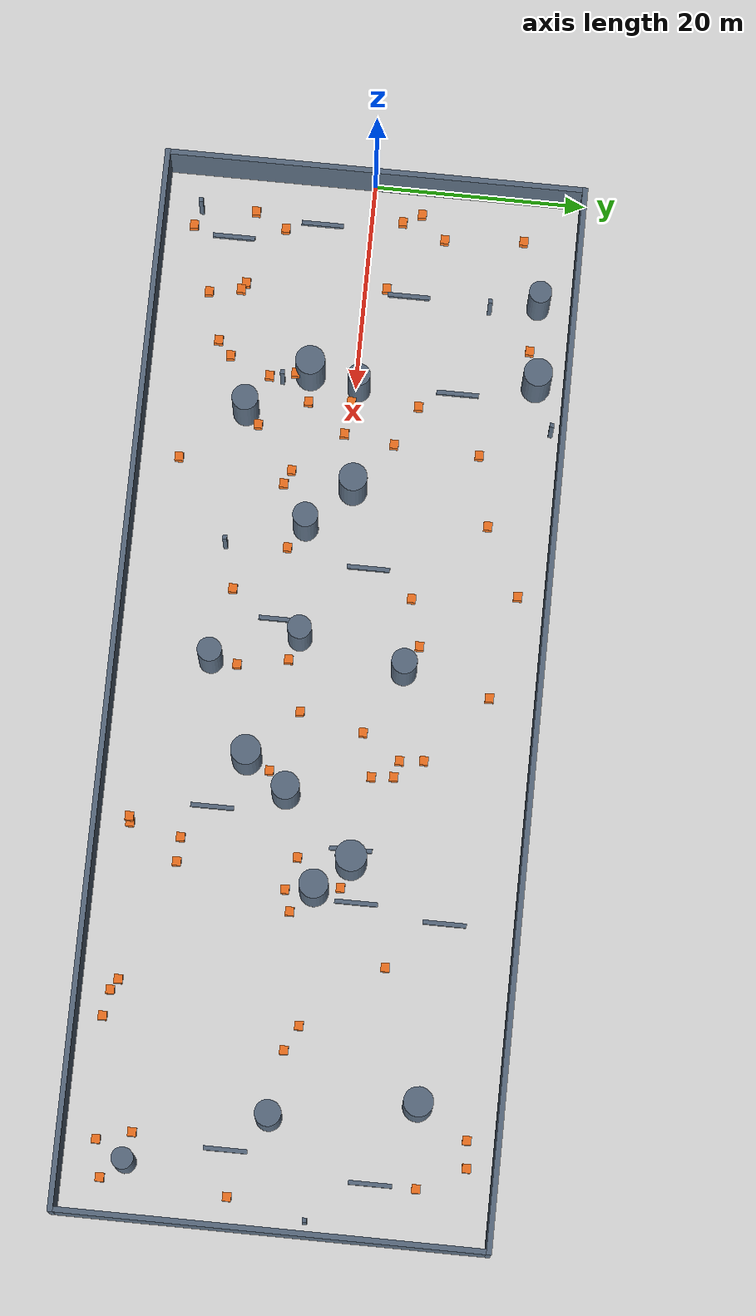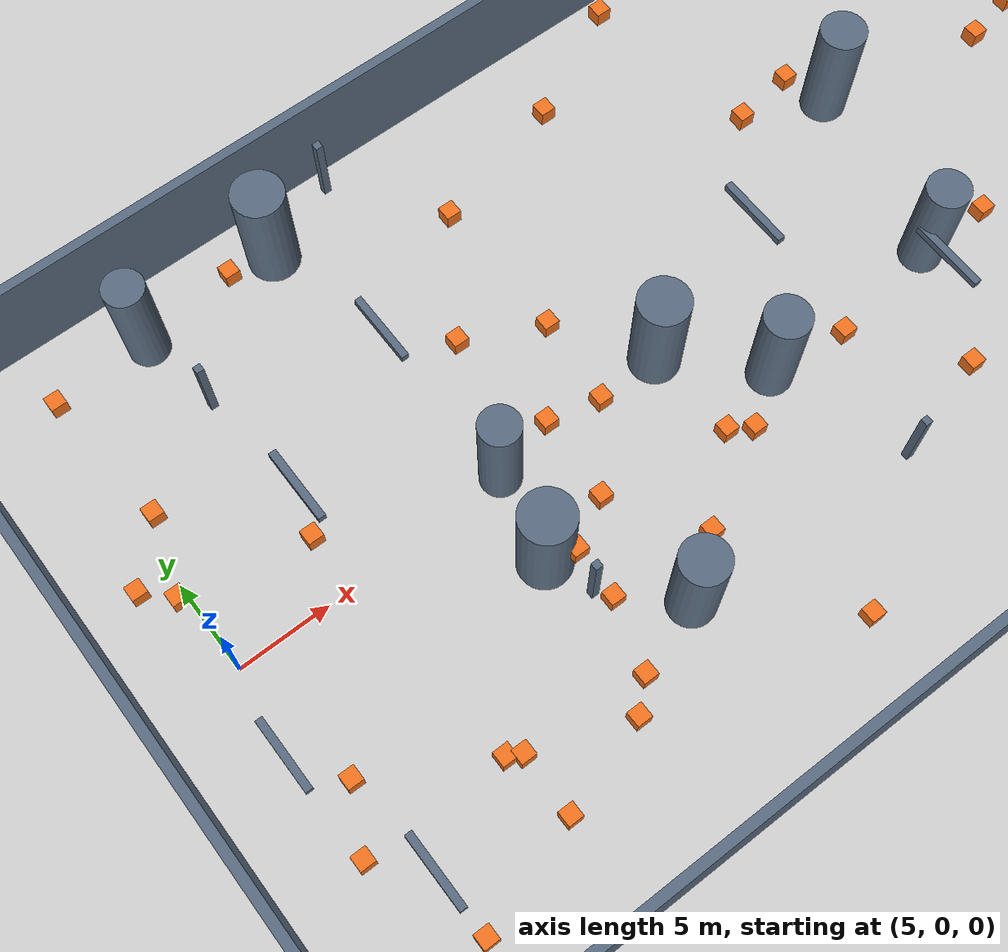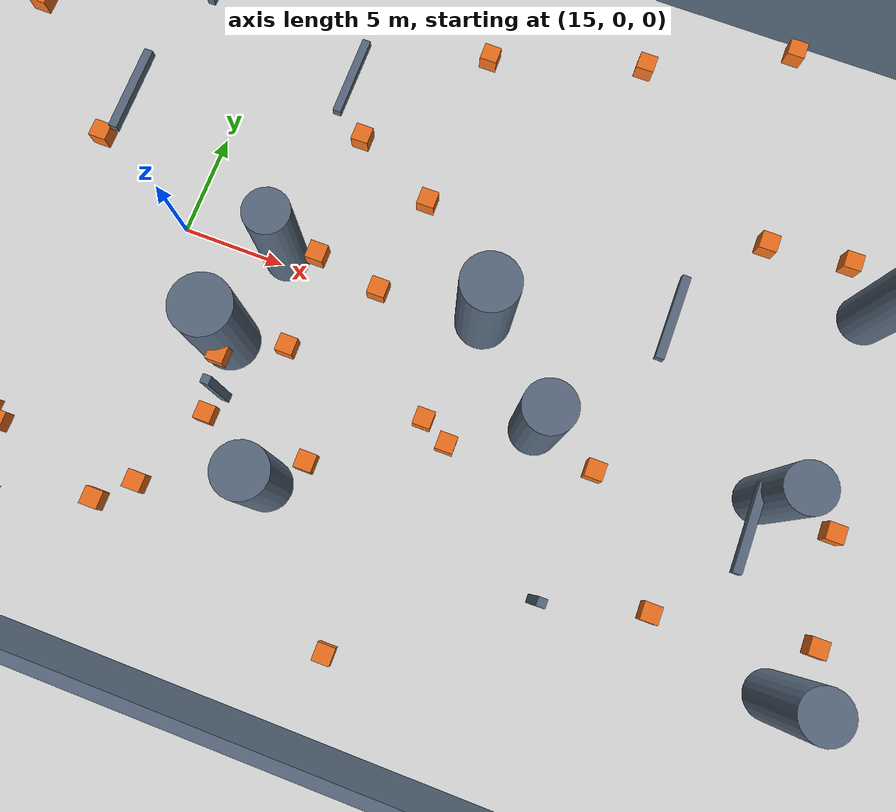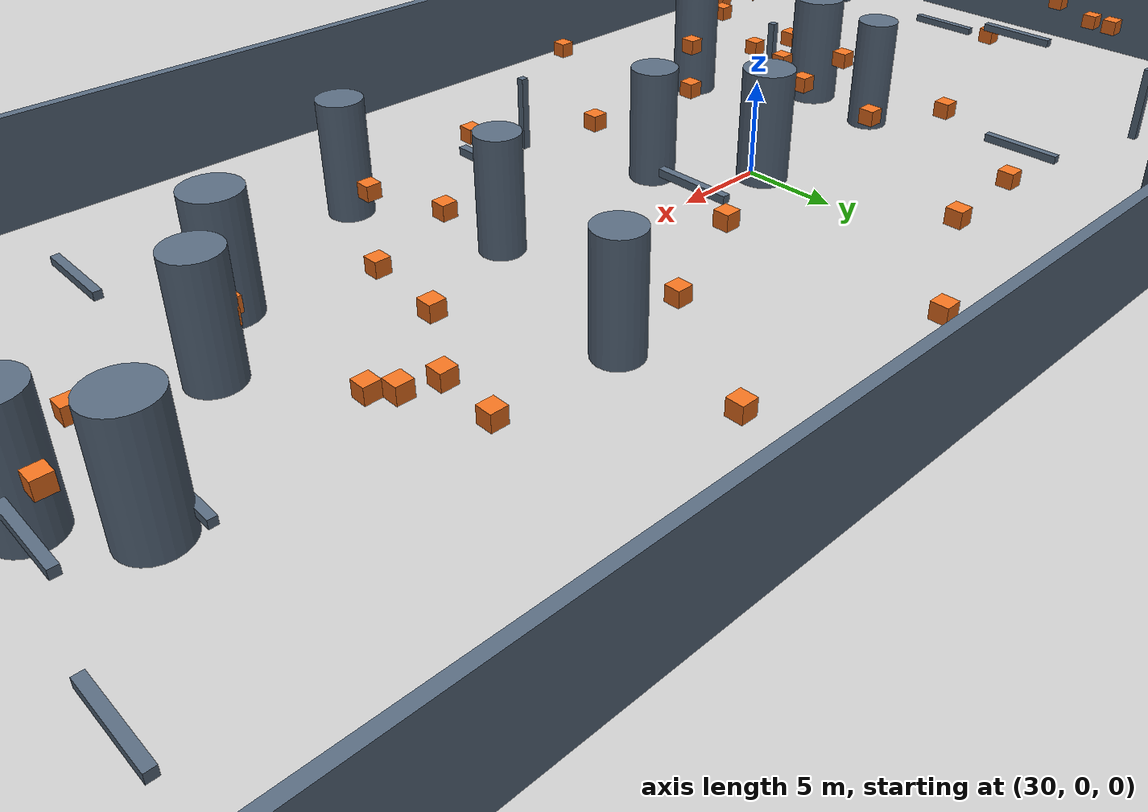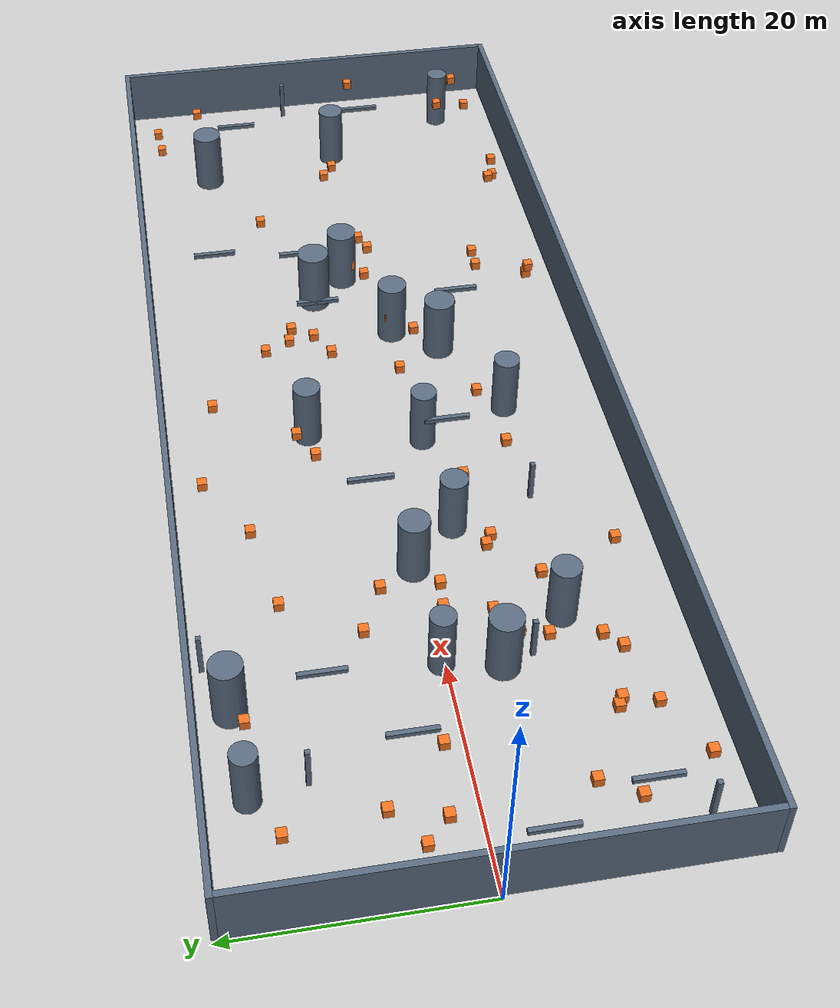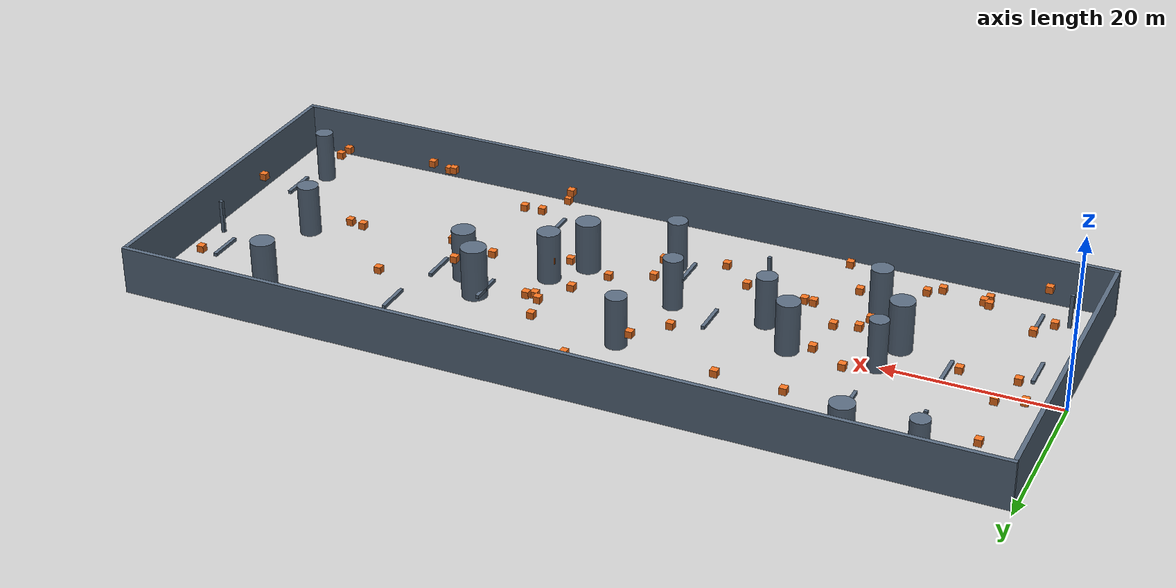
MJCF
<mujoco model="D02">
  <compiler angle="radian" />
  <include file="boundary.xml" />
  <custom>
    <text name="scene_metadata" data="{&quot;id&quot;: &quot;D02&quot;, &quot;difficulty&quot;: &quot;medium&quot;, &quot;title&quot;: &quot;SANDO medium dynamic benchmark&quot;, &quot;source&quot;: &quot;SANDO&quot;, &quot;dynamic&quot;: true, &quot;benchmark_role&quot;: &quot;primary&quot;, &quot;review_duration_s&quot;: 45.0, &quot;layout_policy&quot;: &quot;SANDO dynamic benchmark laws; fixed bounded realization; no route reservation&quot;, &quot;source_provenance&quot;: {&quot;seed&quot;: 0, &quot;total_obstacles&quot;: 100, &quot;dynamic_obstacles&quot;: 65, &quot;static_obstacles&quot;: 35, &quot;static_cylinders&quot;: 17, &quot;static_boxes&quot;: 18, &quot;static_vertical_boxes&quot;: 6, &quot;static_horizontal_boxes&quot;: 12, &quot;dynamic_fraction&quot;: 0.65, &quot;static_box_fraction_of_static_share&quot;: 0.5, &quot;static_box_vertical_fraction&quot;: 0.35, &quot;bounded_sampling_rejections&quot;: 131, &quot;sampling_note&quot;: &quot;SANDO dynamic laws conditioned on P5 physical bounds and endpoint safety; half of the static-cylinder share replaced by SANDO-sized static boxes&quot;}, &quot;topology_acceptance&quot;: {&quot;require_direct_route_blocked&quot;: true, &quot;require_reachable&quot;: true, &quot;max_full_length_straight_lanes&quot;: null, &quot;max_clear_straight_run_m&quot;: null}, &quot;obstacle_metadata&quot;: [{&quot;role&quot;: &quot;sando_dynamic_cube&quot;, &quot;source_index&quot;: 0}, {&quot;role&quot;: &quot;sando_dynamic_cube&quot;, &quot;source_index&quot;: 1}, {&quot;role&quot;: &quot;sando_dynamic_cube&quot;, &quot;source_index&quot;: 2}, {&quot;role&quot;: &quot;sando_dynamic_cube&quot;, &quot;source_index&quot;: 3}, {&quot;role&quot;: &quot;sando_dynamic_cube&quot;, &quot;source_index&quot;: 4}, {&quot;role&quot;: &quot;sando_dynamic_cube&quot;, &quot;source_index&quot;: 5}, {&quot;role&quot;: &quot;sando_dynamic_cube&quot;, &quot;source_index&quot;: 6}, {&quot;role&quot;: &quot;sando_dynamic_cube&quot;, &quot;source_index&quot;: 7}, {&quot;role&quot;: &quot;sando_dynamic_cube&quot;, &quot;source_index&quot;: 8}, {&quot;role&quot;: &quot;sando_dynamic_cube&quot;, &quot;source_index&quot;: 9}, {&quot;role&quot;: &quot;sando_dynamic_cube&quot;, &quot;source_index&quot;: 10}, {&quot;role&quot;: &quot;sando_dynamic_cube&quot;, &quot;source_index&quot;: 11}, {&quot;role&quot;: &quot;sando_dynamic_cube&quot;, &quot;source_index&quot;: 12}, {&quot;role&quot;: &quot;sando_dynamic_cube&quot;, &quot;source_index&quot;: 13}, {&quot;role&quot;: &quot;sando_dynamic_cube&quot;, &quot;source_index&quot;: 14}, {&quot;role&quot;: &quot;sando_dynamic_cube&quot;, &quot;source_index&quot;: 15}, {&quot;role&quot;: &quot;sando_dynamic_cube&quot;, &quot;source_index&quot;: 16}, {&quot;role&quot;: &quot;sando_dynamic_cube&quot;, &quot;source_index&quot;: 17}, {&quot;role&quot;: &quot;sando_dynamic_cube&quot;, &quot;source_index&quot;: 18}, {&quot;role&quot;: &quot;sando_dynamic_cube&quot;, &quot;source_index&quot;: 19}, {&quot;role&quot;: &quot;sando_dynamic_cube&quot;, &quot;source_index&quot;: 20}, {&quot;role&quot;: &quot;sando_dynamic_cube&quot;, &quot;source_index&quot;: 21}, {&quot;role&quot;: &quot;sando_dynamic_cube&quot;, &quot;source_index&quot;: 22}, {&quot;role&quot;: &quot;sando_dynamic_cube&quot;, &quot;source_index&quot;: 23}, {&quot;role&quot;: &quot;sando_dynamic_cube&quot;, &quot;source_index&quot;: 24}, {&quot;role&quot;: &quot;sando_dynamic_cube&quot;, &quot;source_index&quot;: 25}, {&quot;role&quot;: &quot;sando_dynamic_cube&quot;, &quot;source_index&quot;: 26}, {&quot;role&quot;: &quot;sando_dynamic_cube&quot;, &quot;source_index&quot;: 27}, {&quot;role&quot;: &quot;sando_dynamic_cube&quot;, &quot;source_index&quot;: 28}, {&quot;role&quot;: &quot;sando_dynamic_cube&quot;, &quot;source_index&quot;: 29}, {&quot;role&quot;: &quot;sando_dynamic_cube&quot;, &quot;source_index&quot;: 30}, {&quot;role&quot;: &quot;sando_dynamic_cube&quot;, &quot;source_index&quot;: 31}, {&quot;role&quot;: &quot;sando_dynamic_cube&quot;, &quot;source_index&quot;: 32}, {&quot;role&quot;: &quot;sando_dynamic_cube&quot;, &quot;source_index&quot;: 33}, {&quot;role&quot;: &quot;sando_dynamic_cube&quot;, &quot;source_index&quot;: 34}, {&quot;role&quot;: &quot;sando_dynamic_cube&quot;, &quot;source_index&quot;: 35}, {&quot;role&quot;: &quot;sando_dynamic_cube&quot;, &quot;source_index&quot;: 36}, {&quot;role&quot;: &quot;sando_dynamic_cube&quot;, &quot;source_index&quot;: 37}, {&quot;role&quot;: &quot;sando_dynamic_cube&quot;, &quot;source_index&quot;: 38}, {&quot;role&quot;: &quot;sando_dynamic_cube&quot;, &quot;source_index&quot;: 39}, {&quot;role&quot;: &quot;sando_dynamic_cube&quot;, &quot;source_index&quot;: 40}, {&quot;role&quot;: &quot;sando_dynamic_cube&quot;, &quot;source_index&quot;: 41}, {&quot;role&quot;: &quot;sando_dynamic_cube&quot;, &quot;source_index&quot;: 42}, {&quot;role&quot;: &quot;sando_dynamic_cube&quot;, &quot;source_index&quot;: 43}, {&quot;role&quot;: &quot;sando_dynamic_cube&quot;, &quot;source_index&quot;: 44}, {&quot;role&quot;: &quot;sando_dynamic_cube&quot;, &quot;source_index&quot;: 45}, {&quot;role&quot;: &quot;sando_dynamic_cube&quot;, &quot;source_index&quot;: 46}, {&quot;role&quot;: &quot;sando_dynamic_cube&quot;, &quot;source_index&quot;: 47}, {&quot;role&quot;: &quot;sando_dynamic_cube&quot;, &quot;source_index&quot;: 48}, {&quot;role&quot;: &quot;sando_dynamic_cube&quot;, &quot;source_index&quot;: 49}, {&quot;role&quot;: &quot;sando_dynamic_cube&quot;, &quot;source_index&quot;: 50}, {&quot;role&quot;: &quot;sando_dynamic_cube&quot;, &quot;source_index&quot;: 51}, {&quot;role&quot;: &quot;sando_dynamic_cube&quot;, &quot;source_index&quot;: 52}, {&quot;role&quot;: &quot;sando_dynamic_cube&quot;, &quot;source_index&quot;: 53}, {&quot;role&quot;: &quot;sando_dynamic_cube&quot;, &quot;source_index&quot;: 54}, {&quot;role&quot;: &quot;sando_dynamic_cube&quot;, &quot;source_index&quot;: 55}, {&quot;role&quot;: &quot;sando_dynamic_cube&quot;, &quot;source_index&quot;: 56}, {&quot;role&quot;: &quot;sando_dynamic_cube&quot;, &quot;source_index&quot;: 57}, {&quot;role&quot;: &quot;sando_dynamic_cube&quot;, &quot;source_index&quot;: 58}, {&quot;role&quot;: &quot;sando_dynamic_cube&quot;, &quot;source_index&quot;: 59}, {&quot;role&quot;: &quot;sando_dynamic_cube&quot;, &quot;source_index&quot;: 60}, {&quot;role&quot;: &quot;sando_dynamic_cube&quot;, &quot;source_index&quot;: 61}, {&quot;role&quot;: &quot;sando_dynamic_cube&quot;, &quot;source_index&quot;: 62}, {&quot;role&quot;: &quot;sando_dynamic_cube&quot;, &quot;source_index&quot;: 63}, {&quot;role&quot;: &quot;sando_dynamic_cube&quot;, &quot;source_index&quot;: 64}, {&quot;role&quot;: &quot;sando_static_vertical_box&quot;, &quot;source_index&quot;: 65}, {&quot;role&quot;: &quot;sando_static_vertical_box&quot;, &quot;source_index&quot;: 66}, {&quot;role&quot;: &quot;sando_static_vertical_box&quot;, &quot;source_index&quot;: 67}, {&quot;role&quot;: &quot;sando_static_vertical_box&quot;, &quot;source_index&quot;: 68}, {&quot;role&quot;: &quot;sando_static_vertical_box&quot;, &quot;source_index&quot;: 69}, {&quot;role&quot;: &quot;sando_static_vertical_box&quot;, &quot;source_index&quot;: 70}, {&quot;role&quot;: &quot;sando_static_horizontal_box&quot;, &quot;source_index&quot;: 71}, {&quot;role&quot;: &quot;sando_static_horizontal_box&quot;, &quot;source_index&quot;: 72}, {&quot;role&quot;: &quot;sando_static_horizontal_box&quot;, &quot;source_index&quot;: 73}, {&quot;role&quot;: &quot;sando_static_horizontal_box&quot;, &quot;source_index&quot;: 74}, {&quot;role&quot;: &quot;sando_static_horizontal_box&quot;, &quot;source_index&quot;: 75}, {&quot;role&quot;: &quot;sando_static_horizontal_box&quot;, &quot;source_index&quot;: 76}, {&quot;role&quot;: &quot;sando_static_horizontal_box&quot;, &quot;source_index&quot;: 77}, {&quot;role&quot;: &quot;sando_static_horizontal_box&quot;, &quot;source_index&quot;: 78}, {&quot;role&quot;: &quot;sando_static_horizontal_box&quot;, &quot;source_index&quot;: 79}, {&quot;role&quot;: &quot;sando_static_horizontal_box&quot;, &quot;source_index&quot;: 80}, {&quot;role&quot;: &quot;sando_static_horizontal_box&quot;, &quot;source_index&quot;: 81}, {&quot;role&quot;: &quot;sando_static_horizontal_box&quot;, &quot;source_index&quot;: 82}, {&quot;role&quot;: &quot;sando_dynamic_static_cylinder&quot;, &quot;source_index&quot;: 83}, {&quot;role&quot;: &quot;sando_dynamic_static_cylinder&quot;, &quot;source_index&quot;: 84}, {&quot;role&quot;: &quot;sando_dynamic_static_cylinder&quot;, &quot;source_index&quot;: 85}, {&quot;role&quot;: &quot;sando_dynamic_static_cylinder&quot;, &quot;source_index&quot;: 86}, {&quot;role&quot;: &quot;sando_dynamic_static_cylinder&quot;, &quot;source_index&quot;: 87}, {&quot;role&quot;: &quot;sando_dynamic_static_cylinder&quot;, &quot;source_index&quot;: 88}, {&quot;role&quot;: &quot;sando_dynamic_static_cylinder&quot;, &quot;source_index&quot;: 89}, {&quot;role&quot;: &quot;sando_dynamic_static_cylinder&quot;, &quot;source_index&quot;: 90}, {&quot;role&quot;: &quot;sando_dynamic_static_cylinder&quot;, &quot;source_index&quot;: 91}, {&quot;role&quot;: &quot;sando_dynamic_static_cylinder&quot;, &quot;source_index&quot;: 92}, {&quot;role&quot;: &quot;sando_dynamic_static_cylinder&quot;, &quot;source_index&quot;: 93}, {&quot;role&quot;: &quot;sando_dynamic_static_cylinder&quot;, &quot;source_index&quot;: 94}, {&quot;role&quot;: &quot;sando_dynamic_static_cylinder&quot;, &quot;source_index&quot;: 95}, {&quot;role&quot;: &quot;sando_dynamic_static_cylinder&quot;, &quot;source_index&quot;: 96}, {&quot;role&quot;: &quot;sando_dynamic_static_cylinder&quot;, &quot;source_index&quot;: 97}, {&quot;role&quot;: &quot;sando_dynamic_static_cylinder&quot;, &quot;source_index&quot;: 98}, {&quot;role&quot;: &quot;sando_dynamic_static_cylinder&quot;, &quot;source_index&quot;: 99}]}" />
  </custom>
  <worldbody>
    <body name="obstacle_4" mocap="true" pos="26.049231039195941 12.201113080520891 2.6947972153423572" user="1 2.0280834003280379 3.4394093728079085 2.7976470844485375 2.4745349314446989 42.392953161809466">
      <geom name="obstacle_geom_4" type="box" size="0.40000000000000002 0.40000000000000002 0.40000000000000002" rgba="0.95 0.45 0.12 1" />
    </body>
    <body name="obstacle_5" mocap="true" pos="10.905784593110369 2.0506898436220489 3.3262456394675586" user="1 3.0948818226568475 3.6289337265826722 3.0805672139406477 2.8915156379214029 41.360715848967082">
      <geom name="obstacle_geom_5" type="box" size="0.40000000000000002 0.40000000000000002 0.40000000000000002" rgba="0.95 0.45 0.12 1" />
    </body>
    <body name="obstacle_6" mocap="true" pos="58.761706417543635 -2.2004389489793539 2.8851474463324251" user="1 2.7698022919453207 3.151302028329777 2.5806590048055158 0.56817398566306843 34.74385294895518">
      <geom name="obstacle_geom_6" type="box" size="0.40000000000000002 0.40000000000000002 0.40000000000000002" rgba="0.95 0.45 0.12 1" />
    </body>
    <body name="obstacle_7" mocap="true" pos="89.817312135787901 16.923297592807074 2.6623996997922177" user="1 2.78259210046925 3.4105667997088123 2.5512682426242543 2.4348861255236356 45.274058851496306">
      <geom name="obstacle_geom_7" type="box" size="0.40000000000000002 0.40000000000000002 0.40000000000000002" rgba="0.95 0.45 0.12 1" />
    </body>
    <body name="obstacle_8" mocap="true" pos="79.332508413022424 -16.705080472134103 2.9511324201628488" user="1 2.9728884039383336 3.2602946808229456 3.6901551513430304 0.72910686618556875 43.399267532880948">
      <geom name="obstacle_geom_8" type="box" size="0.40000000000000002 0.40000000000000002 0.40000000000000002" rgba="0.95 0.45 0.12 1" />
    </body>
    <body name="obstacle_9" mocap="true" pos="11.713429320851798 -11.181578525286859 3.6783318868423036" user="1 2.6650722984393109 3.6318261930673188 2.2012150404321922 0.43907546673691156 42.861941002044489">
      <geom name="obstacle_geom_9" type="box" size="0.40000000000000002 0.40000000000000002 0.40000000000000002" rgba="0.95 0.45 0.12 1" />
    </body>
    <body name="obstacle_10" mocap="true" pos="4.5234067865612353 2.9546414715666778 4.1400640587961588" user="1 3.0683959365214477 3.3611782651245132 2.0533935893244104 1.9049997297343748 41.410808950800593">
      <geom name="obstacle_geom_10" type="box" size="0.40000000000000002 0.40000000000000002 0.40000000000000002" rgba="0.95 0.45 0.12 1" />
    </body>
    <body name="obstacle_11" mocap="true" pos="57.595294803154076 -4.3516236270869246 1.98055976134075" user="1 3.9610333012945373 2.0727840752229714 2.0432730197100479 2.8830938407188333 34.715927529485427">
      <geom name="obstacle_geom_11" type="box" size="0.40000000000000002 0.40000000000000002 0.40000000000000002" rgba="0.95 0.45 0.12 1" />
    </body>
    <body name="obstacle_12" mocap="true" pos="12.389516442443171 -11.576939604534143 3.7029863614167238" user="1 3.8739383172891615 2.0455651513373168 2.8512376639336345 0.30450065812250926 35.906738036330665">
      <geom name="obstacle_geom_12" type="box" size="0.40000000000000002 0.40000000000000002 0.40000000000000002" rgba="0.95 0.45 0.12 1" />
    </body>
    <body name="obstacle_13" mocap="true" pos="19.935579046706298 -5.6577879475359261 3.4263932249014424" user="1 3.6766531303868328 3.8369641239906631 2.3388492121949351 2.0179216907191577 47.13401338456309">
      <geom name="obstacle_geom_13" type="box" size="0.40000000000000002 0.40000000000000002 0.40000000000000002" rgba="0.95 0.45 0.12 1" />
    </body>
    <body name="obstacle_14" mocap="true" pos="5.8050943826498669 7.04807137197513 3.8816983748064655" user="1 2.6846250821571678 2.5013746785702233 3.1935827869388218 1.3269421010972369 34.554620213402437">
      <geom name="obstacle_geom_14" type="box" size="0.40000000000000002 0.40000000000000002 0.40000000000000002" rgba="0.95 0.45 0.12 1" />
    </body>
    <body name="obstacle_15" mocap="true" pos="47.162541509628795 -3.603784173697818 2.7764509580971208" user="1 3.0172002601252661 2.6228920020004134 2.714303365180526 2.5129835231069371 35.763944508934479">
      <geom name="obstacle_geom_15" type="box" size="0.40000000000000002 0.40000000000000002 0.40000000000000002" rgba="0.95 0.45 0.12 1" />
    </body>
    <body name="obstacle_16" mocap="true" pos="63.308875991830035 -16.661317992970829 3.4022174218452497" user="1 3.9736429604102561 2.8036336444250871 3.3570300104839363 0.94853141166402699 35.169587442765689">
      <geom name="obstacle_geom_16" type="box" size="0.40000000000000002 0.40000000000000002 0.40000000000000002" rgba="0.95 0.45 0.12 1" />
    </body>
    <body name="obstacle_17" mocap="true" pos="74.913482339086315 8.0529927037943878 3.1214474586989183" user="1 3.4247153050324837 3.8054203012386614 3.2802823995864481 1.117347788916768 40.323882454380104">
      <geom name="obstacle_geom_17" type="box" size="0.40000000000000002 0.40000000000000002 0.40000000000000002" rgba="0.95 0.45 0.12 1" />
    </body>
    <body name="obstacle_18" mocap="true" pos="51.900372870132927 -2.0582285761378181 2.4544752177086102" user="1 3.1697774039865489 3.3586051347442498 2.8460761470148448 1.1049943690032777 47.482132891581152">
      <geom name="obstacle_geom_18" type="box" size="0.40000000000000002 0.40000000000000002 0.40000000000000002" rgba="0.95 0.45 0.12 1" />
    </body>
    <body name="obstacle_19" mocap="true" pos="40.590688316794889 7.1971793244000892 4.0106263316043806" user="1 2.9908118498223777 3.83409334551963 2.6449206297626122 1.495322674472251 39.699747333827759">
      <geom name="obstacle_geom_19" type="box" size="0.40000000000000002 0.40000000000000002 0.40000000000000002" rgba="0.95 0.45 0.12 1" />
    </body>
    <body name="obstacle_20" mocap="true" pos="67.006815131529422 -11.920347648021856 2.9390824416671215" user="1 2.4375461937443115 2.6804406301020638 3.9251329265093635 2.6970241140930229 44.775674976806208">
      <geom name="obstacle_geom_20" type="box" size="0.40000000000000002 0.40000000000000002 0.40000000000000002" rgba="0.95 0.45 0.12 1" />
    </body>
    <body name="obstacle_21" mocap="true" pos="6.6359131037785239 -16.614274526677196 3.9755812560175139" user="1 2.0788316587560578 2.4501813073529921 2.0812640532918021 0.045855419909180406 45.186175115133629">
      <geom name="obstacle_geom_21" type="box" size="0.40000000000000002 0.40000000000000002 0.40000000000000002" rgba="0.95 0.45 0.12 1" />
    </body>
    <body name="obstacle_22" mocap="true" pos="57.387247749154923 7.1428542715743646 3.7204399561285482" user="1 3.5156927645227651 3.9810651254111242 3.4939307783002658 2.7173421700585987 35.051697470977054">
      <geom name="obstacle_geom_22" type="box" size="0.40000000000000002 0.40000000000000002 0.40000000000000002" rgba="0.95 0.45 0.12 1" />
    </body>
    <body name="obstacle_23" mocap="true" pos="53.541630432858099 3.9445705466987633 3.8027864686414152" user="1 2.9644271261318322 3.5820804234181911 2.7771377803002286 1.7591653667443488 45.303145012298259">
      <geom name="obstacle_geom_23" type="box" size="0.40000000000000002 0.40000000000000002 0.40000000000000002" rgba="0.95 0.45 0.12 1" />
    </body>
    <body name="obstacle_24" mocap="true" pos="3.2465462373943987 4.6960169472402171 3.0198651648733423" user="1 2.2105856493127298 3.0982875324635542 2.6933359532799366 1.1502422194946622 44.113148626079798">
      <geom name="obstacle_geom_24" type="box" size="0.40000000000000002 0.40000000000000002 0.40000000000000002" rgba="0.95 0.45 0.12 1" />
    </body>
    <body name="obstacle_25" mocap="true" pos="49.031967752424563 15.251064616489657 2.9404789716248936" user="1 2.9343768300761406 3.2646252801107689 2.6757307596575046 0.37297137758475729 42.621372876151028">
      <geom name="obstacle_geom_25" type="box" size="0.40000000000000002 0.40000000000000002 0.40000000000000002" rgba="0.95 0.45 0.12 1" />
    </body>
    <body name="obstacle_26" mocap="true" pos="81.025084943735891 0.7602923692560708 3.6419565974426606" user="1 2.3782549357143701 3.5642282127145881 2.8891592081126811 2.2698486638920952 39.013739799999918">
      <geom name="obstacle_geom_26" type="box" size="0.40000000000000002 0.40000000000000002 0.40000000000000002" rgba="0.95 0.45 0.12 1" />
    </body>
    <body name="obstacle_27" mocap="true" pos="63.696603741172041 -16.617772207242698 2.2792446205848154" user="1 2.7385120784795953 3.8978638578833236 2.1157142278020347 1.2258786635494441 38.406087963473148">
      <geom name="obstacle_geom_27" type="box" size="0.40000000000000002 0.40000000000000002 0.40000000000000002" rgba="0.95 0.45 0.12 1" />
    </body>
    <body name="obstacle_28" mocap="true" pos="55.81815883930463 7.5280121427413285 3.682628622728529" user="1 2.892328767899695 2.7975538102594122 3.5352814856425567 1.2951494866923361 35.716676285036215">
      <geom name="obstacle_geom_28" type="box" size="0.40000000000000002 0.40000000000000002 0.40000000000000002" rgba="0.95 0.45 0.12 1" />
    </body>
    <body name="obstacle_29" mocap="true" pos="70.62940429996884 -1.1426031313678529 3.2127149849438545" user="1 3.5201796734469841 2.4647254428824903 3.5239900261954231 0.84026515406516777 47.411525651368251">
      <geom name="obstacle_geom_29" type="box" size="0.40000000000000002 0.40000000000000002 0.40000000000000002" rgba="0.95 0.45 0.12 1" />
    </body>
    <body name="obstacle_30" mocap="true" pos="25.260808582471327 -8.6641398455804541 3.520891418234926" user="1 3.8175486504440141 3.1908198309728388 2.0709019313820551 2.3767094149251307 36.63258897181786">
      <geom name="obstacle_geom_30" type="box" size="0.40000000000000002 0.40000000000000002 0.40000000000000002" rgba="0.95 0.45 0.12 1" />
    </body>
    <body name="obstacle_31" mocap="true" pos="57.398180308237656 5.0855875641937054 2.6255032153518911" user="1 2.821609004671199 3.2691880247529319 2.8068257531736354 2.3356507771621433 44.299958091266404">
      <geom name="obstacle_geom_31" type="box" size="0.40000000000000002 0.40000000000000002 0.40000000000000002" rgba="0.95 0.45 0.12 1" />
    </body>
    <body name="obstacle_32" mocap="true" pos="29.225416811082216 -5.1278270577690179 3.0152436237875446" user="1 2.3141399342313145 3.3940638619738497 2.7628555059614262 1.7731874242710211 33.993972468288071">
      <geom name="obstacle_geom_32" type="box" size="0.40000000000000002 0.40000000000000002 0.40000000000000002" rgba="0.95 0.45 0.12 1" />
    </body>
    <body name="obstacle_33" mocap="true" pos="6.022210749970192 -7.9925939015116043 3.4808387606001832" user="1 2.1048117561241275 3.2422843905644703 2.0510935985356769 1.4145866049297013 45.894649035665161">
      <geom name="obstacle_geom_33" type="box" size="0.40000000000000002 0.40000000000000002 0.40000000000000002" rgba="0.95 0.45 0.12 1" />
    </body>
    <body name="obstacle_34" mocap="true" pos="28.792410486343755 -15.781589319104281 2.3435795818670315" user="1 2.6603915450592361 2.336510797302358 2.8434197850228093 2.6916029308916265 38.692792671954692">
      <geom name="obstacle_geom_34" type="box" size="0.40000000000000002 0.40000000000000002 0.40000000000000002" rgba="0.95 0.45 0.12 1" />
    </body>
    <body name="obstacle_35" mocap="true" pos="44.729189524972476 8.3531102977695184 2.5966474806091693" user="1 2.2584460706839868 3.8207847950879401 2.8882486723239302 2.3680132176760775 37.955643420208702">
      <geom name="obstacle_geom_35" type="box" size="0.40000000000000002 0.40000000000000002 0.40000000000000002" rgba="0.95 0.45 0.12 1" />
    </body>
    <body name="obstacle_36" mocap="true" pos="97.067579335449565 -4.1394205219243485 4.1855676538042115" user="1 2.9074083446390664 2.6790074796724141 2.2046777398341075 2.648496555215579 44.405024506962128">
      <geom name="obstacle_geom_36" type="box" size="0.40000000000000002 0.40000000000000002 0.40000000000000002" rgba="0.95 0.45 0.12 1" />
    </body>
    <body name="obstacle_37" mocap="true" pos="18.778503564961891 -11.935136541343612 3.1906715252705213" user="1 3.4712053135234315 2.6244641917482099 3.7199887988667451 0.76391752396713186 37.241697568153832">
      <geom name="obstacle_geom_37" type="box" size="0.40000000000000002 0.40000000000000002 0.40000000000000002" rgba="0.95 0.45 0.12 1" />
    </body>
    <body name="obstacle_38" mocap="true" pos="20.118504547378379 -8.1343499489234858 2.2671345327507098" user="1 3.2093398043822861 3.0723300521724863 2.5219759534678792 0.6953636262541657 33.663446178987911">
      <geom name="obstacle_geom_38" type="box" size="0.40000000000000002 0.40000000000000002 0.40000000000000002" rgba="0.95 0.45 0.12 1" />
    </body>
    <body name="obstacle_39" mocap="true" pos="78.349363589217262 -16.043969341344781 3.4315400247174423" user="1 2.4975473913261994 2.5691139680115649 3.472166866021599 1.978862375164909 43.565021687158442">
      <geom name="obstacle_geom_39" type="box" size="0.40000000000000002 0.40000000000000002 0.40000000000000002" rgba="0.95 0.45 0.12 1" />
    </body>
    <body name="obstacle_40" mocap="true" pos="22.007359233142765 6.1105368027201976 3.1433971190177958" user="1 2.9893978805726262 3.906651761194639 2.9618301770989426 0.94183097863698151 45.24696695653823">
      <geom name="obstacle_geom_40" type="box" size="0.40000000000000002 0.40000000000000002 0.40000000000000002" rgba="0.95 0.45 0.12 1" />
    </body>
    <body name="obstacle_41" mocap="true" pos="25.915829939726198 4.1722397213739804 3.3136754092891998" user="1 3.6433925973835684 3.5707375003654978 2.7681846610274228 0.1775409178882108 32.385337533028562">
      <geom name="obstacle_geom_41" type="box" size="0.40000000000000002 0.40000000000000002 0.40000000000000002" rgba="0.95 0.45 0.12 1" />
    </body>
    <body name="obstacle_42" mocap="true" pos="30.490241957438379 -5.745683737518462 2.6580532210523775" user="1 3.4646276478534608 2.3024324231359294 2.0439744217858777 1.8834898634550656 32.167296660028178">
      <geom name="obstacle_geom_42" type="box" size="0.40000000000000002 0.40000000000000002 0.40000000000000002" rgba="0.95 0.45 0.12 1" />
    </body>
    <body name="obstacle_43" mocap="true" pos="4.4963240716168524 -10.968976931114657 3.1155074932178222" user="1 2.1330901953720574 2.1248115352530554 3.9441864887472335 1.2679586813416495 45.956358227859774">
      <geom name="obstacle_geom_43" type="box" size="0.40000000000000002 0.40000000000000002 0.40000000000000002" rgba="0.95 0.45 0.12 1" />
    </body>
    <body name="obstacle_44" mocap="true" pos="40.92844343999316 -9.4503639537973463 2.6253467143953002" user="1 3.4712738242838932 3.3732932315012021 2.9252996706826391 0.12581714014847101 46.418377904838323">
      <geom name="obstacle_geom_44" type="box" size="0.40000000000000002 0.40000000000000002 0.40000000000000002" rgba="0.95 0.45 0.12 1" />
    </body>
    <body name="obstacle_45" mocap="true" pos="33.005100665524942 13.605462261514553 3.7826340847096986" user="1 2.4935885361724814 2.0439506166661445 3.6129339470912059 0.50653201511826496 44.292076868624967">
      <geom name="obstacle_geom_45" type="box" size="0.40000000000000002 0.40000000000000002 0.40000000000000002" rgba="0.95 0.45 0.12 1" />
    </body>
    <body name="obstacle_46" mocap="true" pos="68.684365628883867 -1.7632912412091315 3.3855508601670135" user="1 2.8075576178221233 2.9920100726358951 2.0413675348915112 2.2198755069601592 32.321555990248626">
      <geom name="obstacle_geom_46" type="box" size="0.40000000000000002 0.40000000000000002 0.40000000000000002" rgba="0.95 0.45 0.12 1" />
    </body>
    <body name="obstacle_47" mocap="true" pos="68.072538584763961 3.2801478215184865 3.6036704459525066" user="1 2.5795551984748313 3.3722216302466599 2.4141959512620765 1.5878160040734934 37.183545703931983">
      <geom name="obstacle_geom_47" type="box" size="0.40000000000000002 0.40000000000000002 0.40000000000000002" rgba="0.95 0.45 0.12 1" />
    </body>
    <body name="obstacle_48" mocap="true" pos="94.668939459479617 12.735504407535963 3.6144709365844396" user="1 3.4945639016063921 2.3753091703391975 3.0977545222055607 1.2716376918265344 46.867708526387702">
      <geom name="obstacle_geom_48" type="box" size="0.40000000000000002 0.40000000000000002 0.40000000000000002" rgba="0.95 0.45 0.12 1" />
    </body>
    <body name="obstacle_49" mocap="true" pos="17.383353806681644 -13.205646257613015 3.1354470145520597" user="1 2.3148035791469654 2.2201073459037213 3.0078463946600129 2.3899829136600239 41.390269153780409">
      <geom name="obstacle_geom_49" type="box" size="0.40000000000000002 0.40000000000000002 0.40000000000000002" rgba="0.95 0.45 0.12 1" />
    </body>
    <body name="obstacle_50" mocap="true" pos="92.35592861863212 17.119450100286912 3.0389957545620874" user="1 3.8807816545941343 2.5053711747708407 3.7635745668072946 2.3204378788805706 41.464044673502002">
      <geom name="obstacle_geom_50" type="box" size="0.40000000000000002 0.40000000000000002 0.40000000000000002" rgba="0.95 0.45 0.12 1" />
    </body>
    <body name="obstacle_51" mocap="true" pos="12.538247475645914 -14.641753759795213 2.423571458617241" user="1 3.2837867694537897 3.5281369048889615 2.0934275199444436 2.4712796178372534 32.467693315542647">
      <geom name="obstacle_geom_51" type="box" size="0.40000000000000002 0.40000000000000002 0.40000000000000002" rgba="0.95 0.45 0.12 1" />
    </body>
    <body name="obstacle_52" mocap="true" pos="55.494683005801228 9.7659139923204279 3.024885487176912" user="1 3.899357351366004 2.6893967062256712 3.1717667104750786 0.24839718820294909 40.671329069812259">
      <geom name="obstacle_geom_52" type="box" size="0.40000000000000002 0.40000000000000002 0.40000000000000002" rgba="0.95 0.45 0.12 1" />
    </body>
    <body name="obstacle_53" mocap="true" pos="15.519843069219807 16.006495490320013 2.7109059438949559" user="1 2.077202284821035 3.1710054304743709 3.28309930134151 0.1013870961063279 43.815589163619087">
      <geom name="obstacle_geom_53" type="box" size="0.40000000000000002 0.40000000000000002 0.40000000000000002" rgba="0.95 0.45 0.12 1" />
    </body>
    <body name="obstacle_54" mocap="true" pos="81.780014147418498 -17.134270312521753 3.0935997602647154" user="1 2.9130949618055322 2.4774425746838422 2.9173407632449688 0.47816912925684651 37.078451654777062">
      <geom name="obstacle_geom_54" type="box" size="0.40000000000000002 0.40000000000000002 0.40000000000000002" rgba="0.95 0.45 0.12 1" />
    </body>
    <body name="obstacle_55" mocap="true" pos="65.520729970094749 -0.94057775392506571 2.7236803787101667" user="1 3.0868855876090606 3.6411884802232786 2.6867655963072252 2.4388862723454472 33.047875632170523">
      <geom name="obstacle_geom_55" type="box" size="0.40000000000000002 0.40000000000000002 0.40000000000000002" rgba="0.95 0.45 0.12 1" />
    </body>
    <body name="obstacle_56" mocap="true" pos="5.1723879096013832 14.484363318065746 3.6629176373396484" user="1 3.7168958623032227 2.5244853351681922 3.2959947215894614 0.28715414188652943 44.910007970300633">
      <geom name="obstacle_geom_56" type="box" size="0.40000000000000002 0.40000000000000002 0.40000000000000002" rgba="0.95 0.45 0.12 1" />
    </body>
    <body name="obstacle_57" mocap="true" pos="22.503349122656381 -4.2064943194226281 3.0810589039678287" user="1 2.7941184181037251 3.1627514968666088 3.6711645759995086 2.9939027192266709 45.838954120625026">
      <geom name="obstacle_geom_57" type="box" size="0.40000000000000002 0.40000000000000002 0.40000000000000002" rgba="0.95 0.45 0.12 1" />
    </body>
    <body name="obstacle_58" mocap="true" pos="96.411900688783959 -15.733594437100891 4.0105576471257987" user="1 2.0974353424341565 3.4269516377513018 2.0535914267263449 1.2631490468457889 45.603663778804133">
      <geom name="obstacle_geom_58" type="box" size="0.40000000000000002 0.40000000000000002 0.40000000000000002" rgba="0.95 0.45 0.12 1" />
    </body>
    <body name="obstacle_59" mocap="true" pos="39.310814762828208 16.982572705989703 3.3527805644478308" user="1 3.2083685615954933 2.3227580960036631 2.6809915672892193 1.2332884928362662 41.15447097788978">
      <geom name="obstacle_geom_59" type="box" size="0.40000000000000002 0.40000000000000002 0.40000000000000002" rgba="0.95 0.45 0.12 1" />
    </body>
    <body name="obstacle_60" mocap="true" pos="64.735597147100179 -11.803195000950733 3.0772003711203206" user="1 3.96344242265004 2.2223699132603301 3.3770864863979764 1.842915352477966 37.748768690815986">
      <geom name="obstacle_geom_60" type="box" size="0.40000000000000002 0.40000000000000002 0.40000000000000002" rgba="0.95 0.45 0.12 1" />
    </body>
    <body name="obstacle_61" mocap="true" pos="25.388347854124227 -0.53874140617617172 3.6029150554155009" user="1 3.8454635912037949 3.1232900552694631 3.6544835700791647 0.23379963890880295 45.383404800125554">
      <geom name="obstacle_geom_61" type="box" size="0.40000000000000002 0.40000000000000002 0.40000000000000002" rgba="0.95 0.45 0.12 1" />
    </body>
    <body name="obstacle_62" mocap="true" pos="92.081456546442084 -13.279944948619153 3.8099494470122903" user="1 3.6991323406519765 3.757317736651526 3.0342790396347845 1.8247627316560306 35.083131492678675">
      <geom name="obstacle_geom_62" type="box" size="0.40000000000000002 0.40000000000000002 0.40000000000000002" rgba="0.95 0.45 0.12 1" />
    </body>
    <body name="obstacle_63" mocap="true" pos="92.948384435730958 -16.528200315220008 2.8528616549130756" user="1 2.6690560763045479 3.0135902445527369 2.9110496049986185 1.439829817861384 33.394542389653154">
      <geom name="obstacle_geom_63" type="box" size="0.40000000000000002 0.40000000000000002 0.40000000000000002" rgba="0.95 0.45 0.12 1" />
    </body>
    <body name="obstacle_64" mocap="true" pos="83.316008379683055 -0.38880152976745563 3.0799502251771336" user="1 2.945357505460187 2.3620367531444226 3.0820011699843732 0.47861921718240397 45.316851205967282">
      <geom name="obstacle_geom_64" type="box" size="0.40000000000000002 0.40000000000000002 0.40000000000000002" rgba="0.95 0.45 0.12 1" />
    </body>
    <body name="obstacle_65" mocap="true" pos="22.461614764460968 -0.17478306446518488 4.2876164899738312" user="1 3.0179568965214001 2.6817433251688776 2.1550035820121414 1.7210008000349966 35.371884873972888">
      <geom name="obstacle_geom_65" type="box" size="0.40000000000000002 0.40000000000000002 0.40000000000000002" rgba="0.95 0.45 0.12 1" />
    </body>
    <body name="obstacle_66" mocap="true" pos="36.749912771263801 -4.7535053310597739 3.532737348838948" user="1 2.4632576895937728 3.8717844515936317 3.4847761359251095 1.4433586223424573 45.766420060229798">
      <geom name="obstacle_geom_66" type="box" size="0.40000000000000002 0.40000000000000002 0.40000000000000002" rgba="0.95 0.45 0.12 1" />
    </body>
    <body name="obstacle_67" mocap="true" pos="47.972749846874805 -8.3456262586630814 2.2839482174595038" user="1 2.688031106187128 2.4870641044277217 2.3738818307168992 2.8676272035709531 39.710211476264661">
      <geom name="obstacle_geom_67" type="box" size="0.40000000000000002 0.40000000000000002 0.40000000000000002" rgba="0.95 0.45 0.12 1" />
    </body>
    <body name="obstacle_68" mocap="true" pos="67.562907486623686 0.088887307407127025 2.4467122326092858" user="1 2.6290478783535685 3.3678434789425324 2.1837905566657492 0.95143573867384479 45.933313951817631">
      <geom name="obstacle_geom_68" type="box" size="0.40000000000000002 0.40000000000000002 0.40000000000000002" rgba="0.95 0.45 0.12 1" />
    </body>
    <body name="obstacle_69" mocap="true" pos="22.737815097545244 18.703295120999577 2" user="0 0 0 0 0 0">
      <geom name="obstacle_geom_69" type="box" size="0.20000000000000001 0.20000000000000001 2" rgba="0.35 0.42 0.5 1" />
    </body>
    <body name="obstacle_70" mocap="true" pos="98.416972196571265 3.0153065238494463 2" user="0 0 0 0 0 0">
      <geom name="obstacle_geom_70" type="box" size="0.20000000000000001 0.20000000000000001 2" rgba="0.35 0.42 0.5 1" />
    </body>
    <body name="obstacle_71" mocap="true" pos="4.043598030882201 -16.260872106712267 2" user="0 0 0 0 0 0">
      <geom name="obstacle_geom_71" type="box" size="0.20000000000000001 0.20000000000000001 2" rgba="0.35 0.42 0.5 1" />
    </body>
    <body name="obstacle_72" mocap="true" pos="20.030163768999245 -6.927537268825894 2" user="0 0 0 0 0 0">
      <geom name="obstacle_geom_72" type="box" size="0.20000000000000001 0.20000000000000001 2" rgba="0.35 0.42 0.5 1" />
    </body>
    <body name="obstacle_73" mocap="true" pos="11.310821161287443 11.888430922820735 2" user="0 0 0 0 0 0">
      <geom name="obstacle_geom_73" type="box" size="0.20000000000000001 0.20000000000000001 2" rgba="0.35 0.42 0.5 1" />
    </body>
    <body name="obstacle_74" mocap="true" pos="36.415457001524068 -10.650652065013109 2" user="0 0 0 0 0 0">
      <geom name="obstacle_geom_74" type="box" size="0.20000000000000001 0.20000000000000001 2" rgba="0.35 0.42 0.5 1" />
    </body>
    <body name="obstacle_75" mocap="true" pos="4.3693870366308225 -4.6931256250807785 0.71622422983320044" user="0 0 0 0 0 0">
      <geom name="obstacle_geom_75" type="box" size="0.20000000000000001 2 0.20000000000000001" rgba="0.35 0.42 0.5 1" />
    </body>
    <body name="obstacle_76" mocap="true" pos="11.649145052958731 4.1858204024669021 4.0658034807811978" user="0 0 0 0 0 0">
      <geom name="obstacle_geom_76" type="box" size="0.20000000000000001 2 0.20000000000000001" rgba="0.35 0.42 0.5 1" />
    </body>
    <body name="obstacle_77" mocap="true" pos="19.936592192623294 9.6424482661755171 1.4117398757633406" user="0 0 0 0 0 0">
      <geom name="obstacle_geom_77" type="box" size="0.20000000000000001 2 0.20000000000000001" rgba="0.35 0.42 0.5 1" />
    </body>
    <body name="obstacle_78" mocap="true" pos="6.6778715975074459 -12.914588473445221 1.5434833408670048" user="0 0 0 0 0 0">
      <geom name="obstacle_geom_78" type="box" size="0.20000000000000001 2 0.20000000000000001" rgba="0.35 0.42 0.5 1" />
    </body>
    <body name="obstacle_79" mocap="true" pos="92.832136463690546 -4.722836174164744 3.6065743237833034" user="0 0 0 0 0 0">
      <geom name="obstacle_geom_79" type="box" size="0.20000000000000001 2 0.20000000000000001" rgba="0.35 0.42 0.5 1" />
    </body>
    <body name="obstacle_80" mocap="true" pos="43.581353284495769 -4.7502133321566085 3.4552529971920212" user="0 0 0 0 0 0">
      <geom name="obstacle_geom_80" type="box" size="0.20000000000000001 2 0.20000000000000001" rgba="0.35 0.42 0.5 1" />
    </body>
    <body name="obstacle_81" mocap="true" pos="61.576099659902553 -9.2272922311565999 2.798118153582867" user="0 0 0 0 0 0">
      <geom name="obstacle_geom_81" type="box" size="0.20000000000000001 2 0.20000000000000001" rgba="0.35 0.42 0.5 1" />
    </body>
    <body name="obstacle_82" mocap="true" pos="70.385284995634933 13.08312366525098 3.1378446849739854" user="0 0 0 0 0 0">
      <geom name="obstacle_geom_82" type="box" size="0.20000000000000001 2 0.20000000000000001" rgba="0.35 0.42 0.5 1" />
    </body>
    <body name="obstacle_83" mocap="true" pos="64.074707131369777 3.8360936990472148 1.0313834168477785" user="0 0 0 0 0 0">
      <geom name="obstacle_geom_83" type="box" size="0.20000000000000001 2 0.20000000000000001" rgba="0.35 0.42 0.5 1" />
    </body>
    <body name="obstacle_84" mocap="true" pos="94.518905954999454 8.5936764191053285 1.6823360658204125" user="0 0 0 0 0 0">
      <geom name="obstacle_geom_84" type="box" size="0.20000000000000001 2 0.20000000000000001" rgba="0.35 0.42 0.5 1" />
    </body>
    <body name="obstacle_85" mocap="true" pos="69.235069410426334 4.832697442803223 3.0718652046416359" user="0 0 0 0 0 0">
      <geom name="obstacle_geom_85" type="box" size="0.20000000000000001 2 0.20000000000000001" rgba="0.35 0.42 0.5 1" />
    </body>
    <body name="obstacle_86" mocap="true" pos="37.890897100484956 2.9270341920468965 3.0760980304355385" user="0 0 0 0 0 0">
      <geom name="obstacle_geom_86" type="box" size="0.20000000000000001 2 0.20000000000000001" rgba="0.35 0.42 0.5 1" />
    </body>
    <body name="obstacle_87" mocap="true" pos="20.165606901922938 0.32048657547537474 3" user="0 0 0 0 0 0">
      <geom name="obstacle_geom_87" type="cylinder" size="1.0601708276554875 3" rgba="0.35 0.42 0.5 1" />
    </body>
    <body name="obstacle_88" mocap="true" pos="10.553049812559657 16.442423008266374 3" user="0 0 0 0 0 0">
      <geom name="obstacle_geom_88" type="cylinder" size="1.0622736122794332 3" rgba="0.35 0.42 0.5 1" />
    </body>
    <body name="obstacle_89" mocap="true" pos="89.326697176464265 -1.2080320183408091 3" user="0 0 0 0 0 0">
      <geom name="obstacle_geom_89" type="cylinder" size="1.2274513078770588 3" rgba="0.35 0.42 0.5 1" />
    </body>
    <body name="obstacle_90" mocap="true" pos="33.981531954468601 -3.3512913422481958 3" user="0 0 0 0 0 0">
      <geom name="obstacle_geom_90" type="cylinder" size="1.1886161903982977 3" rgba="0.35 0.42 0.5 1" />
    </body>
    <body name="obstacle_91" mocap="true" pos="56.498294700264786 -6.576267236444572 3" user="0 0 0 0 0 0">
      <geom name="obstacle_geom_91" type="cylinder" size="1.410987931725652 3" rgba="0.35 0.42 0.5 1" />
    </body>
    <body name="obstacle_92" mocap="true" pos="23.356175015719003 -10.061195090100572 3" user="0 0 0 0 0 0">
      <geom name="obstacle_geom_92" type="cylinder" size="1.2402757733137162 3" rgba="0.35 0.42 0.5 1" />
    </body>
    <body name="obstacle_93" mocap="true" pos="44.607912170874698 -2.8204428431214481 3" user="0 0 0 0 0 0">
      <geom name="obstacle_geom_93" type="cylinder" size="1.1266084144906401 3" rgba="0.35 0.42 0.5 1" />
    </body>
    <body name="obstacle_94" mocap="true" pos="47.509563819313335 -10.869620012966132 3" user="0 0 0 0 0 0">
      <geom name="obstacle_geom_94" type="cylinder" size="1.1417606449126345 3" rgba="0.35 0.42 0.5 1" />
    </body>
    <body name="obstacle_95" mocap="true" pos="65.329356108743994 3.9778822457403962 3" user="0 0 0 0 0 0">
      <geom name="obstacle_geom_95" type="cylinder" size="1.4647727576971361 3" rgba="0.35 0.42 0.5 1" />
    </body>
    <body name="obstacle_96" mocap="true" pos="29.99030942676174 0.71219582286579453 3" user="0 0 0 0 0 0">
      <geom name="obstacle_geom_96" type="cylinder" size="1.3365814466877131 3" rgba="0.35 0.42 0.5 1" />
    </body>
    <body name="obstacle_97" mocap="true" pos="94.619724943486545 -13.795702653285598 3" user="0 0 0 0 0 0">
      <geom name="obstacle_geom_97" type="cylinder" size="1.0183423509241654 3" rgba="0.35 0.42 0.5 1" />
    </body>
    <body name="obstacle_98" mocap="true" pos="87.00356827809361 12.206574726210555 3" user="0 0 0 0 0 0">
      <geom name="obstacle_geom_98" type="cylinder" size="1.3828741382808818 3" rgba="0.35 0.42 0.5 1" />
    </body>
    <body name="obstacle_99" mocap="true" pos="46.860076777859661 7.1112281643247321 3" user="0 0 0 0 0 0">
      <geom name="obstacle_geom_99" type="cylinder" size="1.2057346124056711 3" rgba="0.35 0.42 0.5 1" />
    </body>
    <body name="obstacle_100" mocap="true" pos="19.205165779226341 -4.364249394198243 3" user="0 0 0 0 0 0">
      <geom name="obstacle_geom_100" type="cylinder" size="1.3935232980106305 3" rgba="0.35 0.42 0.5 1" />
    </body>
    <body name="obstacle_101" mocap="true" pos="68.208453677450564 0.83648091186379148 3" user="0 0 0 0 0 0">
      <geom name="obstacle_geom_101" type="cylinder" size="1.3619635117353928 3" rgba="0.35 0.42 0.5 1" />
    </body>
    <body name="obstacle_102" mocap="true" pos="18.320358931429993 16.923381251924589 3" user="0 0 0 0 0 0">
      <geom name="obstacle_geom_102" type="cylinder" size="1.3562882872347319 3" rgba="0.35 0.42 0.5 1" />
    </body>
    <body name="obstacle_103" mocap="true" pos="59.448555546026192 -2.6383313083206481 3" user="0 0 0 0 0 0">
      <geom name="obstacle_geom_103" type="cylinder" size="1.316770794573183 3" rgba="0.35 0.42 0.5 1" />
    </body>
  </worldbody>
</mujoco>

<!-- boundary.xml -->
<mujoco model="navigation-boundary">
  <worldbody>
    <body name="obstacle_0" mocap="true" pos="50 -19.75 3.25" user="0 0 0 0 0 0">
      <geom name="obstacle_geom_0" type="box" size="50 0.25 2.75" rgba="0.35 0.42 0.5 1" />
    </body>
    <body name="obstacle_1" mocap="true" pos="50 19.75 3.25" user="0 0 0 0 0 0">
      <geom name="obstacle_geom_1" type="box" size="50 0.25 2.75" rgba="0.35 0.42 0.5 1" />
    </body>
    <body name="obstacle_2" mocap="true" pos="0.25 0 3.25" user="0 0 0 0 0 0">
      <geom name="obstacle_geom_2" type="box" size="0.25 19.5 2.75" rgba="0.35 0.42 0.5 1" />
    </body>
    <body name="obstacle_3" mocap="true" pos="99.75 0 3.25" user="0 0 0 0 0 0">
      <geom name="obstacle_geom_3" type="box" size="0.25 19.5 2.75" rgba="0.35 0.42 0.5 1" />
    </body>
  </worldbody>
</mujoco>
